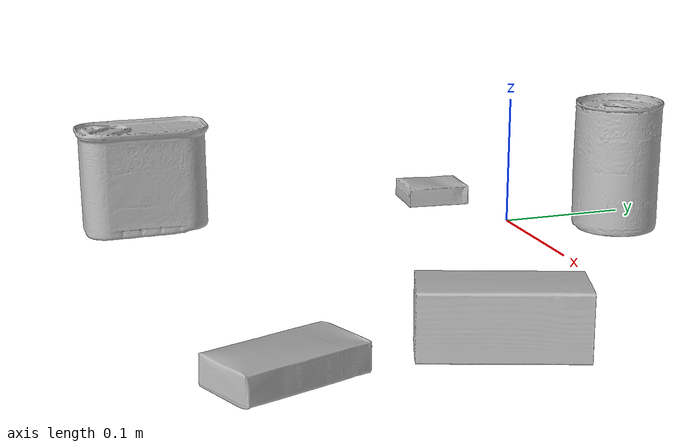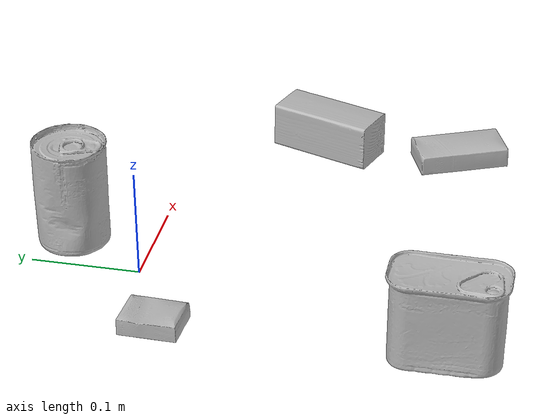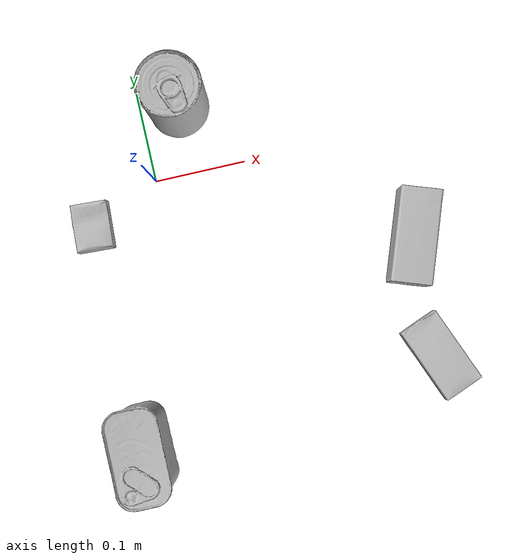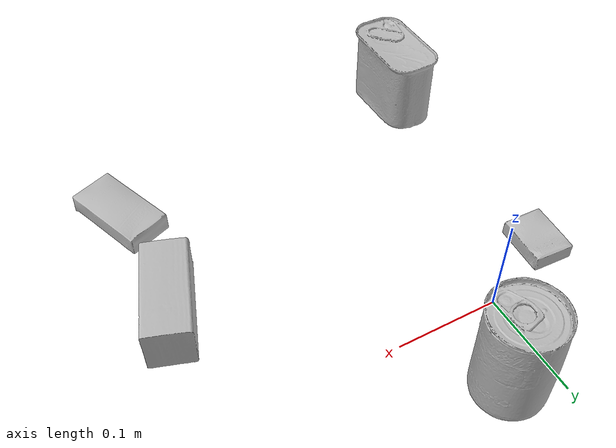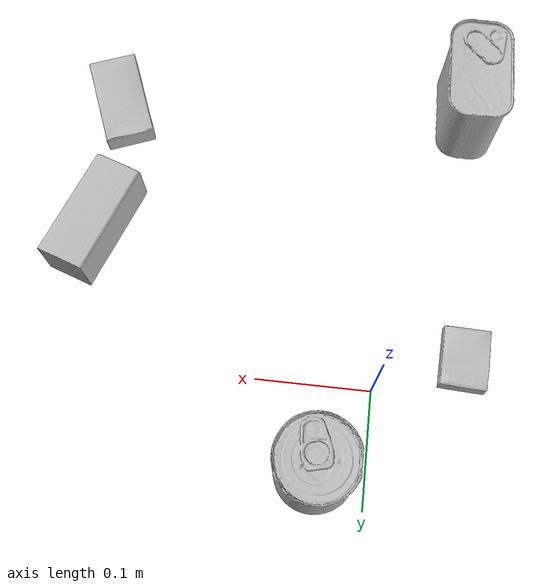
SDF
<sdf version="1.4">
  <world name="default">
    <light name="light1" type="point">
      <pose>0 0 1 0 0 0</pose>
      <diffuse>3 3 3 1</diffuse>
      <specular>3 3 3 1</specular>
    </light>
    <light name="light2" type="point">
      <pose>0 0.5 2 0 0 0</pose>
      <diffuse>1 1 1 1</diffuse>
      <specular>1 1 1 1</specular>
    </light>
    <light name="light3" type="point">
      <pose>0 0.5 2 0 0 0</pose>
      <diffuse>3 3 3 1</diffuse>
      <specular>3 3 3 1</specular>
    </light>
    <scene>
      <ambient>0.7 0.7 0.7</ambient>
    </scene>
    <model name="box1">
      <link name="link_box1">
        <collision name="default">
          <geometry>
            <mesh>
              <uri>model://sugar_box/collision_meshes/collision.obj</uri>
              <scale>0.5 0.5 0.5</scale>
            </mesh>
          </geometry>
          <surface>
            <friction>
              <ode>
                <mu>0.5</mu>
                <mu2>0.5</mu2>
              </ode>
            </friction>
          <contact>
        <ode>
            <max_vel>0</max_vel>
            <min_depth>0.0001</min_depth>
            <kp>1e8</kp>
        </ode>
    </contact></surface>
        </collision>
        <visual name="default">
          <geometry>
            <mesh>
              <uri>model://sugar_box/visual_meshes/visual.dae</uri>
              <scale>0.5 0.5 0.5</scale>
            </mesh>
          </geometry>
        </visual>
        <inertial>
          <mass>0.048160675913095474</mass>
          <pose>0.0005171863595023751 1.924554817378521e-05 -0.00018182402709499002 -0.0004046258638373534 0.0010506635215919557 0.0026153787891515894</pose>
          <inertia>
            <ixx>1.0031835e-05</ixx>
            <iyy>3.2424945e-05</iyy>
            <izz>3.8816543e-05</izz>
            <ixy>0</ixy>
            <ixz>0</ixz>
            <iyz>0</iyz>
          </inertia>
        </inertial>
      </link>
      <pose>0.26024383306503296 -0.2560145854949951 0.011399301700294018 0.0007754130455095594 -0.02343253393846457 -1.197030217235461</pose>
    </model>
    <model name="box2">
      <link name="link_box2">
        <collision name="default">
          <geometry>
            <mesh>
              <uri>model://cracker_box/collision_meshes/collision.obj</uri>
              <scale>0.25 0.25 0.25</scale>
            </mesh>
          </geometry>
          <surface>
            <friction>
              <ode>
                <mu>0.5</mu>
                <mu2>0.5</mu2>
              </ode>
            </friction>
          <contact>
        <ode>
            <max_vel>0</max_vel>
            <min_depth>0.0001</min_depth>
            <kp>1e8</kp>
        </ode>
    </contact></surface>
        </collision>
        <visual name="default">
          <geometry>
            <mesh>
              <uri>model://cracker_box/visual_meshes/visual.dae</uri>
              <scale>0.25 0.25 0.25</scale>
            </mesh>
          </geometry>
        </visual>
        <inertial>
          <mass>0.047952666878700256</mass>
          <pose>0.00023660370789002627 6.358561950037256e-05 -0.0004257383698131889 -0.0003162075404896153 -0.011106488669099107 0.002546795234185617</pose>
          <inertia>
            <ixx>7.623136e-06</ixx>
            <iyy>1.2587296e-05</iyy>
            <izz>1.7963224e-05</izz>
            <ixy>0</ixy>
            <ixz>0</ixz>
            <iyz>0</iyz>
          </inertia>
        </inertial>
      </link>
      <pose>-0.07789569348096848 -0.0350845530629158 0.009096028283238411 -0.014051100456225351 -0.005016021328667093 -1.6247237160966324</pose>
    </model>
    <model name="box3">
      <link name="link_box3">
        <collision name="default">
          <geometry>
            <mesh>
              <uri>model://wood_block/collision_meshes/collision.obj</uri>
              <scale>0.5 0.5 0.5</scale>
            </mesh>
          </geometry>
          <surface>
            <friction>
              <ode>
                <mu>0.5</mu>
                <mu2>0.5</mu2>
              </ode>
            </friction>
          <contact>
        <ode>
            <max_vel>0</max_vel>
            <min_depth>0.0001</min_depth>
            <kp>1e8</kp>
        </ode>
    </contact></surface>
        </collision>
        <visual name="default">
          <geometry>
            <mesh>
              <uri>model://wood_block/visual_meshes/visual.dae</uri>
              <scale>0.5 0.5 0.5</scale>
            </mesh>
          </geometry>
        </visual>
        <inertial>
          <mass>0.27162742614746094</mass>
          <pose>-2.9066577553749084e-06 -0.000285404734313488 0.00013204291462898254 -0.05220780121661256 -0.005192696561201931 -0.006861379819720353</pose>
          <inertia>
            <ixx>9.086965e-05</ixx>
            <iyy>0.00028705722</iyy>
            <izz>0.0002859835</izz>
            <ixy>0</ixy>
            <ixz>0</ixz>
            <iyz>0</iyz>
          </inertia>
        </inertial>
      </link>
      <pose>0.25992894172668457 -0.1251392662525177 0.02262926660478115 -0.005208485086173634 0.005718730506354643 -1.9117142478256353</pose>
    </model>
    <model name="can1">
      <link name="link_can1">
        <collision name="default">
          <geometry>
            <mesh>
              <uri>model://tomato_soup_can/collision_meshes/collision.obj</uri>
              <scale>1.0 1.0 1.0</scale>
            </mesh>
          </geometry>
          <surface>
            <friction>
              <ode>
                <mu>0.5</mu>
                <mu2>0.5</mu2>
              </ode>
            </friction>
          <contact>
        <ode>
            <max_vel>0</max_vel>
            <min_depth>0.0001</min_depth>
            <kp>1e8</kp>
        </ode>
    </contact></surface>
        </collision>
        <visual name="default">
          <geometry>
            <mesh>
              <uri>model://tomato_soup_can/visual_meshes/visual.dae</uri>
              <scale>1.0 1.0 1.0</scale>
            </mesh>
          </geometry>
        </visual>
        <inertial>
          <mass>0.33680883049964905</mass>
          <pose>0.0001265227037947625 0.0001080552683561109 -0.0017973986687138677 0.007020065933643549 0.0004229964102555597 -0.009903579397299064</pose>
          <inertia>
            <ixx>0.00036928226</ixx>
            <iyy>0.0003671481</iyy>
            <izz>0.00019139561</izz>
            <ixy>0</ixy>
            <ixz>0</ixz>
            <iyz>0</iyz>
          </inertia>
        </inertial>
      </link>
      <pose>0.04285820946097374 0.07326360046863556 0.05127401649951935 -3.865154261172514e-07 -3.602612972985243e-07 -0.042499880411716436</pose>
    </model>
    <model name="can2">
      <link name="link_can2">
        <collision name="default">
          <geometry>
            <mesh>
              <uri>model://potted_meat_can/collision_meshes/collision.obj</uri>
              <scale>1.0 1.0 1.0</scale>
            </mesh>
          </geometry>
          <surface>
            <friction>
              <ode>
                <mu>0.5</mu>
                <mu2>0.5</mu2>
              </ode>
            </friction>
          <contact>
        <ode>
            <max_vel>0</max_vel>
            <min_depth>0.0001</min_depth>
            <kp>1e8</kp>
        </ode>
    </contact></surface>
        </collision>
        <visual name="default">
          <geometry>
            <mesh>
              <uri>model://potted_meat_can/visual_meshes/visual.dae</uri>
              <scale>1.0 1.0 1.0</scale>
            </mesh>
          </geometry>
        </visual>
        <inertial>
          <mass>0.5009446144104004</mass>
          <pose>0.00022888141393195838 -5.9891164710279554e-05 -0.0006367440801113844 -0.028093347044227477 -0.007232596108467961 0.015406262357490775</pose>
          <inertia>
            <ixx>0.0006444129</ixx>
            <iyy>0.0003915297</iyy>
            <izz>0.00046868768</izz>
            <ixy>0</ixy>
            <ixz>0</ixz>
            <iyz>0</iyz>
          </inertia>
        </inertial>
      </link>
      <pose>-0.07114235311746597 -0.28203895688056946 0.042128004133701324 -6.20771360685858e-08 -5.570249057242781e-07 -0.010294228460745737</pose>
    </model>
  <physics type="ode">
      <max_contacts>50</max_contacts>
      <ode>
        <solver>
          <type>quick</type>
          <iters>75</iters>
        </solver>
        <constraints>
          <contact_max_correcting_vel>0</contact_max_correcting_vel>
          <contact_surface_layer>0</contact_surface_layer>
        </constraints>
      </ode>
    </physics></world>
</sdf>
